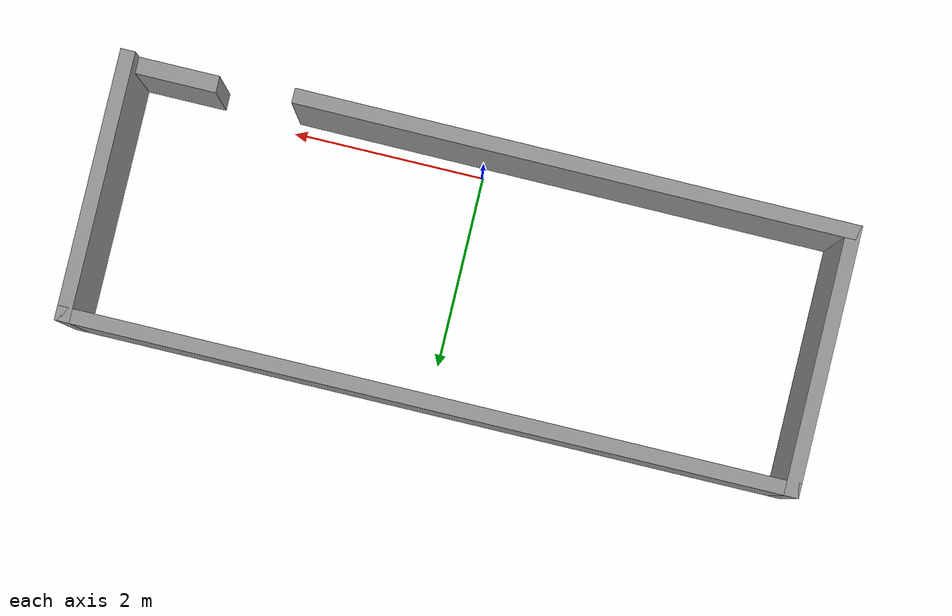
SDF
<?xml version='1.0'?>
<sdf version='1.7'>
  <model name='my_world.world'>
    <pose>-0.015134 1.11987 0 0 -0 0</pose>
    <link name='Door_0'>
      <collision name='Door_0_Collision'>
        <geometry>
          <box>
            <size>0.9 0.17 2</size>
          </box>
        </geometry>
        <pose>0 0 1 0 -0 0</pose>
      </collision>
      <visual name='Door_0_Visual'>
        <pose>0 0 1 0 -0 0</pose>
        <geometry>
          <box>
            <size>0.9 0.17 2</size>
          </box>
        </geometry>
        <material>
          <script>
            <uri>file://media/materials/scripts/gazebo.material</uri>
            <name>Gazebo/Grey</name>
          </script>
        </material>
      </visual>
      <pose>3.22513 -1.27987 0 0 -0 0</pose>
    </link>
    <link name='Wall_0'>
      <collision name='Wall_0_Collision'>
        <geometry>
          <box>
            <size>2.75 0.15 2.5</size>
          </box>
        </geometry>
        <pose>0 0 1.25 0 -0 0</pose>
      </collision>
      <visual name='Wall_0_Visual'>
        <pose>0 0 1.25 0 -0 0</pose>
        <geometry>
          <box>
            <size>2.75 0.15 2.5</size>
          </box>
        </geometry>
        <material>
          <script>
            <uri>file://media/materials/scripts/gazebo.material</uri>
            <name>Gazebo/Grey</name>
          </script>
          <ambient>1 1 1 1</ambient>
        </material>
        <meta>
          <layer>0</layer>
        </meta>
      </visual>
      <pose>-3.67487 0.010134 0 0 -0 1.5708</pose>
    </link>
    <link name='Wall_1'>
      <collision name='Wall_1_Collision'>
        <geometry>
          <box>
            <size>7.5 0.15 2.5</size>
          </box>
        </geometry>
        <pose>0 0 1.25 0 -0 0</pose>
      </collision>
      <visual name='Wall_1_Visual'>
        <pose>0 0 1.25 0 -0 0</pose>
        <geometry>
          <box>
            <size>7.5 0.15 2.5</size>
          </box>
        </geometry>
        <material>
          <script>
            <uri>file://media/materials/scripts/gazebo.material</uri>
            <name>Gazebo/Grey</name>
          </script>
          <ambient>1 1 1 1</ambient>
        </material>
        <meta>
          <layer>0</layer>
        </meta>
      </visual>
      <pose>0.000134 1.31013 0 0 -0 0</pose>
    </link>
    <link name='Wall_2'>
      <collision name='Wall_2_Collision'>
        <geometry>
          <box>
            <size>2.75 0.15 2.5</size>
          </box>
        </geometry>
        <pose>0 0 1.25 0 -0 0</pose>
      </collision>
      <visual name='Wall_2_Visual'>
        <pose>0 0 1.25 0 -0 0</pose>
        <geometry>
          <box>
            <size>2.75 0.15 2.5</size>
          </box>
        </geometry>
        <material>
          <script>
            <uri>file://media/materials/scripts/gazebo.material</uri>
            <name>Gazebo/Grey</name>
          </script>
          <ambient>1 1 1 1</ambient>
        </material>
        <meta>
          <layer>0</layer>
        </meta>
      </visual>
      <pose>3.67513 0.010134 0 0 -0 -1.5708</pose>
    </link>
    <link name='Wall_4'>
      <collision name='Wall_4_Collision'>
        <geometry>
          <box>
            <size>5.74004 0.15 2.5</size>
          </box>
        </geometry>
        <pose>0 0 1.25 0 -0 0</pose>
      </collision>
      <visual name='Wall_4_Visual'>
        <pose>0 0 1.25 0 -0 0</pose>
        <geometry>
          <box>
            <size>5.74004 0.15 2.5</size>
          </box>
        </geometry>
        <material>
          <script>
            <uri>file://media/materials/scripts/gazebo.material</uri>
            <name>Gazebo/Grey</name>
          </script>
          <ambient>1 1 1 1</ambient>
        </material>
        <meta>
          <layer>0</layer>
        </meta>
      </visual>
      <pose>-0.879866 -1.29987 0 0 -0 3.13802</pose>
    </link>
    <static>1</static>
  </model>
</sdf>
